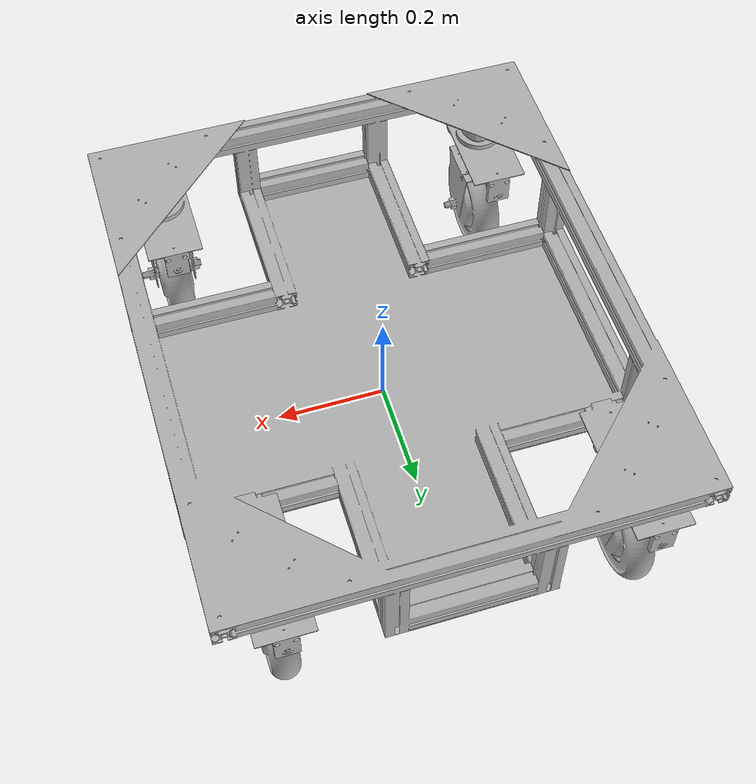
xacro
<?xml version="1.0" ?>
<robot name="omni-vehicle" xmlns:xacro="http://www.ros.org/wiki/xacro">

<xacro:include filename="$(find omni-vehicle_description)/urdf/materials.xacro" />
<xacro:include filename="$(find omni-vehicle_description)/urdf/omni-vehicle.trans" />
<xacro:include filename="$(find omni-vehicle_description)/urdf/omni-vehicle.gazebo" />
<link name="base_link">
  <inertial>
    <origin xyz="1.6985832945975e-05 8.685100085408246e-05 0.24495092321540418" rpy="0 0 0"/>
    <mass value="6.161982035237645"/>
    <inertia ixx="0.743729" iyy="0.551485" izz="1.218598" ixy="-2.6e-05" iyz="-6e-06" ixz="-9e-06"/>
  </inertial>
  <visual>
    <origin xyz="0 0 0" rpy="0 0 0"/>
    <geometry>
      <mesh filename="package://omni-vehicle_description/meshes/base_link.stl" scale="0.001 0.001 0.001"/>
    </geometry>
    <material name="silver"/>
  </visual>
  <collision>
    <origin xyz="0 0 0" rpy="0 0 0"/>
    <geometry>
      <mesh filename="package://omni-vehicle_description/meshes/base_link.stl" scale="0.001 0.001 0.001"/>
    </geometry>
  </collision>
</link>

<link name="caster_1">
  <inertial>
    <origin xyz="1.9330882372603497e-07 0.016095086639288714 -0.015347240471151935" rpy="0 0 0"/>
    <mass value="0.01529886716118361"/>
    <inertia ixx="5.2e-05" iyy="4e-06" izz="5.6e-05" ixy="0.0" iyz="-0.0" ixz="-0.0"/>
  </inertial>
  <visual>
    <origin xyz="-0.311012 -0.391088 -0.296937" rpy="0 0 0"/>
    <geometry>
      <mesh filename="package://omni-vehicle_description/meshes/caster_1.stl" scale="0.001 0.001 0.001"/>
    </geometry>
    <material name="silver"/>
  </visual>
  <collision>
    <origin xyz="-0.311012 -0.391088 -0.296937" rpy="0 0 0"/>
    <geometry>
      <mesh filename="package://omni-vehicle_description/meshes/caster_1.stl" scale="0.001 0.001 0.001"/>
    </geometry>
  </collision>
</link>

<link name="wheel_1">
  <inertial>
    <origin xyz="-0.37547993531241336 0.2858409281828971 -0.3861013474419888" rpy="0 0 0"/>
    <mass value="1.3381613146608942"/>
    <inertia ixx="0.006326" iyy="0.003707" izz="0.003309" ixy="0.0" iyz="1e-06" ixz="0.0"/>
  </inertial>
  <visual>
    <origin xyz="-0.686478 -0.107216 -0.490544" rpy="0 0 0"/>
    <geometry>
      <mesh filename="package://omni-vehicle_description/meshes/wheel_1.stl" scale="0.001 0.001 0.001"/>
    </geometry>
    <material name="silver"/>
  </visual>
  <collision>
    <origin xyz="-0.686478 -0.107216 -0.490544" rpy="0 0 0"/>
    <geometry>
      <mesh filename="package://omni-vehicle_description/meshes/wheel_1.stl" scale="0.001 0.001 0.001"/>
    </geometry>
  </collision>
</link>

<link name="caster_2">
  <inertial>
    <origin xyz="-1.933088160654961e-07 0.016095086639288714 -0.015347240471151935" rpy="0 0 0"/>
    <mass value="0.01529886716118361"/>
    <inertia ixx="5.2e-05" iyy="4e-06" izz="5.6e-05" ixy="0.0" iyz="-0.0" ixz="-0.0"/>
  </inertial>
  <visual>
    <origin xyz="0.311012 -0.391088 -0.296937" rpy="0 0 0"/>
    <geometry>
      <mesh filename="package://omni-vehicle_description/meshes/caster_2.stl" scale="0.001 0.001 0.001"/>
    </geometry>
    <material name="silver"/>
  </visual>
  <collision>
    <origin xyz="0.311012 -0.391088 -0.296937" rpy="0 0 0"/>
    <geometry>
      <mesh filename="package://omni-vehicle_description/meshes/caster_2.stl" scale="0.001 0.001 0.001"/>
    </geometry>
  </collision>
</link>

<link name="wheel_2">
  <inertial>
    <origin xyz="0.24654467806994657 0.28584092818289697 -0.386101347441989" rpy="0 0 0"/>
    <mass value="1.3381613146608942"/>
    <inertia ixx="0.006326" iyy="0.003707" izz="0.003309" ixy="0.0" iyz="1e-06" ixz="0.0"/>
  </inertial>
  <visual>
    <origin xyz="0.557571 -0.107216 -0.490544" rpy="0 0 0"/>
    <geometry>
      <mesh filename="package://omni-vehicle_description/meshes/wheel_2.stl" scale="0.001 0.001 0.001"/>
    </geometry>
    <material name="silver"/>
  </visual>
  <collision>
    <origin xyz="0.557571 -0.107216 -0.490544" rpy="0 0 0"/>
    <geometry>
      <mesh filename="package://omni-vehicle_description/meshes/wheel_2.stl" scale="0.001 0.001 0.001"/>
    </geometry>
  </collision>
</link>

<link name="caster_4">
  <inertial>
    <origin xyz="1.9330882272683425e-07 0.016094700021649977 -0.015347240471153156" rpy="0 0 0"/>
    <mass value="0.01529886716118361"/>
    <inertia ixx="5.2e-05" iyy="4e-06" izz="5.6e-05" ixy="0.0" iyz="-0.0" ixz="-0.0"/>
  </inertial>
  <visual>
    <origin xyz="-0.311012 0.390936 -0.296937" rpy="0 0 0"/>
    <geometry>
      <mesh filename="package://omni-vehicle_description/meshes/caster_4.stl" scale="0.001 0.001 0.001"/>
    </geometry>
    <material name="silver"/>
  </visual>
  <collision>
    <origin xyz="-0.311012 0.390936 -0.296937" rpy="0 0 0"/>
    <geometry>
      <mesh filename="package://omni-vehicle_description/meshes/caster_4.stl" scale="0.001 0.001 0.001"/>
    </geometry>
  </collision>
</link>

<link name="caster_3">
  <inertial>
    <origin xyz="-1.933088160654961e-07 0.016094700021649366 -0.015347240471153212" rpy="0 0 0"/>
    <mass value="0.01529886716118361"/>
    <inertia ixx="5.2e-05" iyy="4e-06" izz="5.6e-05" ixy="0.0" iyz="-0.0" ixz="-0.0"/>
  </inertial>
  <visual>
    <origin xyz="0.311012 0.390936 -0.296937" rpy="0 0 0"/>
    <geometry>
      <mesh filename="package://omni-vehicle_description/meshes/caster_3.stl" scale="0.001 0.001 0.001"/>
    </geometry>
    <material name="silver"/>
  </visual>
  <collision>
    <origin xyz="0.311012 0.390936 -0.296937" rpy="0 0 0"/>
    <geometry>
      <mesh filename="package://omni-vehicle_description/meshes/caster_3.stl" scale="0.001 0.001 0.001"/>
    </geometry>
  </collision>
</link>

<link name="wheel_3">
  <inertial>
    <origin xyz="0.24654467806994668 0.2858405415652577 0.3959236525580096" rpy="0 0 0"/>
    <mass value="1.3381613146608942"/>
    <inertia ixx="0.006326" iyy="0.003707" izz="0.003309" ixy="0.0" iyz="1e-06" ixz="0.0"/>
  </inertial>
  <visual>
    <origin xyz="0.557571 0.674808 0.291481" rpy="0 0 0"/>
    <geometry>
      <mesh filename="package://omni-vehicle_description/meshes/wheel_3.stl" scale="0.001 0.001 0.001"/>
    </geometry>
    <material name="silver"/>
  </visual>
  <collision>
    <origin xyz="0.557571 0.674808 0.291481" rpy="0 0 0"/>
    <geometry>
      <mesh filename="package://omni-vehicle_description/meshes/wheel_3.stl" scale="0.001 0.001 0.001"/>
    </geometry>
  </collision>
</link>

<link name="wheel_4">
  <inertial>
    <origin xyz="-0.37547993531241414 0.2858405415652579 0.39592365255800954" rpy="0 0 0"/>
    <mass value="1.3381613146608942"/>
    <inertia ixx="0.006326" iyy="0.003707" izz="0.003309" ixy="0.0" iyz="1e-06" ixz="0.0"/>
  </inertial>
  <visual>
    <origin xyz="-0.686478 0.674808 0.291481" rpy="0 0 0"/>
    <geometry>
      <mesh filename="package://omni-vehicle_description/meshes/wheel_4.stl" scale="0.001 0.001 0.001"/>
    </geometry>
    <material name="silver"/>
  </visual>
  <collision>
    <origin xyz="-0.686478 0.674808 0.291481" rpy="0 0 0"/>
    <geometry>
      <mesh filename="package://omni-vehicle_description/meshes/wheel_4.stl" scale="0.001 0.001 0.001"/>
    </geometry>
  </collision>
</link>

<joint name="front_right_str" type="continuous">
  <origin xyz="0.311012 0.391088 0.296937" rpy="0 0 0"/>
  <parent link="base_link"/>
  <child link="caster_1"/>
  <axis xyz="0.0 -0.0 1.0"/>
</joint>

<joint name="front_right_off" type="prismatic">
  <origin xyz="0.375466 -0.283872 0.193607" rpy="0 0 0"/>
  <parent link="caster_1"/>
  <child link="wheel_1"/>
  <axis xyz="-0.0 -1.0 -0.0"/>
  <limit upper="0.0" lower="0.0" effort="100" velocity="100"/>
</joint>

<joint name="front_left_str" type="continuous">
  <origin xyz="-0.311012 0.391088 0.296937" rpy="0 0 0"/>
  <parent link="base_link"/>
  <child link="caster_2"/>
  <axis xyz="0.0 -0.0 1.0"/>
</joint>

<joint name="front_left_off" type="prismatic">
  <origin xyz="-0.246559 -0.283872 0.193607" rpy="0 0 0"/>
  <parent link="caster_2"/>
  <child link="wheel_2"/>
  <axis xyz="-0.0 -1.0 -0.0"/>
  <limit upper="0.0" lower="0.0" effort="100" velocity="100"/>
</joint>

<joint name="rear_right_str" type="continuous">
  <origin xyz="0.311012 -0.390936 0.296937" rpy="0 0 0"/>
  <parent link="base_link"/>
  <child link="caster_4"/>
  <axis xyz="0.0 -0.0 1.0"/>
</joint>

<joint name="rear_left_str" type="continuous">
  <origin xyz="-0.311012 -0.390936 0.296937" rpy="0 0 0"/>
  <parent link="base_link"/>
  <child link="caster_3"/>
  <axis xyz="0.0 -0.0 1.0"/>
</joint>

<joint name="rear_left_off" type="prismatic">
  <origin xyz="-0.246559 -0.283872 -0.588418" rpy="0 0 0"/>
  <parent link="caster_3"/>
  <child link="wheel_3"/>
  <axis xyz="-0.0 -1.0 -0.0"/>
  <limit upper="0.0" lower="0.0" effort="100" velocity="100"/>
</joint>

<joint name="rear_right_off" type="prismatic">
  <origin xyz="0.375466 -0.283872 -0.588418" rpy="0 0 0"/>
  <parent link="caster_4"/>
  <child link="wheel_4"/>
  <axis xyz="-0.0 -1.0 -0.0"/>
  <limit upper="0.0" lower="0.0" effort="100" velocity="100"/>
</joint>

</robot>

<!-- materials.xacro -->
<robot name="omni-vehicle" xmlns:xacro="http://www.ros.org/wiki/xacro" >

<material name="silver">
  <color rgba="0.700 0.700 0.700 1.000"/>
</material>

</robot>

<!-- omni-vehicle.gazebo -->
<robot name="omni-vehicle" xmlns:xacro="http://www.ros.org/wiki/xacro" >

<xacro:property name="body_color" value="Gazebo/Silver" />

<gazebo>
    <plugin name="control" filename="libgazebo_ros_control.so">
  <robotNamespace>/omni_vehicle</robotNamespace>
  <robotSimType>gazebo_ros_control/DefaultRobotHWSim</robotSimType>
  </plugin>
</gazebo>
<gazebo reference="base_link">
  <material>${body_color}</material>
  <mu1>0.2</mu1>
  <mu2>0.2</mu2>
  <selfCollide>true</selfCollide>
  <gravity>true</gravity>
</gazebo>

<gazebo reference="caster_1">
  <material>${body_color}</material>
  <mu1>0.2</mu1>
  <mu2>0.2</mu2>
  <selfCollide>true</selfCollide>
</gazebo>

<gazebo reference="wheel_1">
  <material>${body_color}</material>
  <mu1>0.2</mu1>
  <mu2>0.2</mu2>
  <selfCollide>true</selfCollide>
</gazebo>

<gazebo reference="caster_2">
  <material>${body_color}</material>
  <mu1>0.2</mu1>
  <mu2>0.2</mu2>
  <selfCollide>true</selfCollide>
</gazebo>

<gazebo reference="wheel_2">
  <material>${body_color}</material>
  <mu1>0.2</mu1>
  <mu2>0.2</mu2>
  <selfCollide>true</selfCollide>
</gazebo>

<gazebo reference="caster_4">
  <material>${body_color}</material>
  <mu1>0.2</mu1>
  <mu2>0.2</mu2>
  <selfCollide>true</selfCollide>
</gazebo>

<gazebo reference="caster_3">
  <material>${body_color}</material>
  <mu1>0.2</mu1>
  <mu2>0.2</mu2>
  <selfCollide>true</selfCollide>
</gazebo>

<gazebo reference="wheel_3">
  <material>${body_color}</material>
  <mu1>0.2</mu1>
  <mu2>0.2</mu2>
  <selfCollide>true</selfCollide>
</gazebo>

<gazebo reference="wheel_4">
  <material>${body_color}</material>
  <mu1>0.2</mu1>
  <mu2>0.2</mu2>
  <selfCollide>true</selfCollide>
</gazebo>

</robot>
